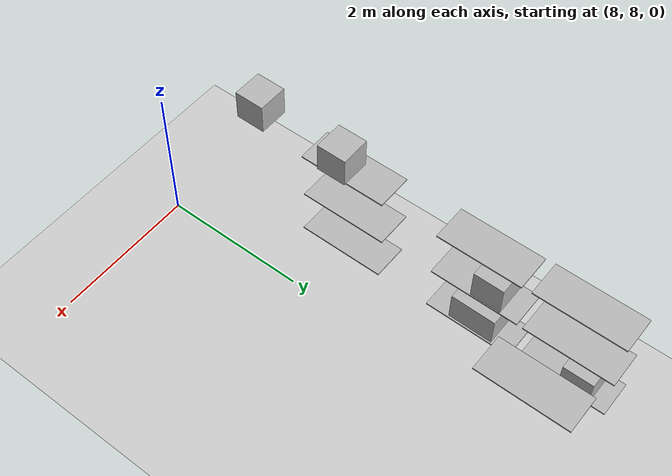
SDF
<sdf version="1.6">
 <world name="default">
  <model name="ground_plane">
   <static>1</static>
   <link name="link">
    <collision name="collision">
     <geometry><plane><normal>0 0 1</normal><size>300 300</size></plane></geometry>
     <surface>
      <contact><collide_bitmask>65535</collide_bitmask></contact>
      <friction><ode><mu>100</mu><mu2>50</mu2></ode></friction>
     </surface>
    </collision>
    <visual name="visual">
     <geometry><plane><normal>0 0 1</normal><size>100 100</size></plane></geometry>
     <material>
      <script><uri>file://media/materials/scripts/gazebo.material</uri><name>Gazebo/Grey</name></script>
     </material>
    </visual>
   </link>
  </model>
  <model name="Plano9">
   <link name="link">
    <gravity>0</gravity>
    <pose>0.117106 1.00481 0.58462 0 -0 0</pose>
    <inertial>
     <mass>1e-06</mass>
     <inertia><ixx>0.00058</ixx><ixy>0</ixy><ixz>0</ixz><iyy>0.00058</iyy><iyz>0</iyz><izz>0.00019</izz></inertia>
    </inertial>
    <visual name="visual">
     <geometry><box><size>0.2 1e-06 0.2</size></box></geometry>
     <material>
      <script>
       <uri>model://Plano9/materials/scripts</uri>
       <uri>model://Plano9/materials/textures</uri>
       <name>Plano9/Diffuse</name>
      </script>
      <shader type="pixel"/>
     </material>
     <cast_shadows>0</cast_shadows>
    </visual>
    <collision name="collision">
     <geometry><box><size>0.2 1e-06 0.2</size></box></geometry>
     <surface>
      <friction>
       <ode><mu>1</mu><mu2>1</mu2><fdir1>0 0 0</fdir1><slip1>0</slip1><slip2>0</slip2></ode>
       <torsional>
        <coefficient>1</coefficient>
        <patch_radius>0</patch_radius>
        <surface_radius>0</surface_radius>
        <use_patch_radius>1</use_patch_radius>
        <ode><slip>0</slip></ode>
       </torsional>
      </friction>
      <bounce><restitution_coefficient>0</restitution_coefficient><threshold>1e+06</threshold></bounce>
      <contact>
       <collide_without_contact>0</collide_without_contact>
       <collide_without_contact_bitmask>1</collide_without_contact_bitmask>
       <collide_bitmask>1</collide_bitmask>
       <ode>
        <soft_cfm>0</soft_cfm>
        <soft_erp>0.2</soft_erp>
        <kp>1e+13</kp>
        <kd>1</kd>
        <max_vel>0.01</max_vel>
        <min_depth>0</min_depth>
       </ode>
       <bullet>
        <split_impulse>1</split_impulse>
        <split_impulse_penetration_threshold>-0.01</split_impulse_penetration_threshold>
        <soft_cfm>0</soft_cfm>
        <soft_erp>0.2</soft_erp>
        <kp>1e+13</kp>
        <kd>1</kd>
       </bullet>
      </contact>
     </surface>
    </collision>
   </link>
   <static>0</static>
   <pose>6.2464 10.5924 0.261153 0 0 -1.57778</pose>
  </model>
  <model name="Plano10">
   <link name="link">
    <gravity>0</gravity>
    <pose>1.70124 1.53194 0.640341 0 -0 0</pose>
    <inertial>
     <mass>1e-06</mass>
     <inertia><ixx>0.00058</ixx><ixy>0</ixy><ixz>0</ixz><iyy>0.00058</iyy><iyz>0</iyz><izz>0.00019</izz></inertia>
    </inertial>
    <visual name="visual">
     <geometry><box><size>0.2 1e-06 0.2</size></box></geometry>
     <material>
      <script>
       <uri>model://Plano10/materials/scripts</uri>
       <uri>model://Plano10/materials/textures</uri>
       <name>Plano10/Diffuse</name>
      </script>
      <shader type="pixel"/>
     </material>
     <cast_shadows>0</cast_shadows>
    </visual>
    <collision name="collision">
     <geometry><box><size>0.2 1e-06 0.2</size></box></geometry>
     <surface>
      <friction>
       <ode><mu>1</mu><mu2>1</mu2><fdir1>0 0 0</fdir1><slip1>0</slip1><slip2>0</slip2></ode>
       <torsional>
        <coefficient>1</coefficient>
        <patch_radius>0</patch_radius>
        <surface_radius>0</surface_radius>
        <use_patch_radius>1</use_patch_radius>
        <ode><slip>0</slip></ode>
       </torsional>
      </friction>
      <bounce><restitution_coefficient>0</restitution_coefficient><threshold>1e+06</threshold></bounce>
      <contact>
       <collide_without_contact>0</collide_without_contact>
       <collide_without_contact_bitmask>1</collide_without_contact_bitmask>
       <collide_bitmask>1</collide_bitmask>
       <ode>
        <soft_cfm>0</soft_cfm>
        <soft_erp>0.2</soft_erp>
        <kp>1e+13</kp>
        <kd>1</kd>
        <max_vel>0.01</max_vel>
        <min_depth>0</min_depth>
       </ode>
       <bullet>
        <split_impulse>1</split_impulse>
        <split_impulse_penetration_threshold>-0.01</split_impulse_penetration_threshold>
        <soft_cfm>0</soft_cfm>
        <soft_erp>0.2</soft_erp>
        <kp>1e+13</kp>
        <kd>1</kd>
       </bullet>
      </contact>
     </surface>
    </collision>
   </link>
   <static>0</static>
   <pose>5.69431 10.7913 1.54976 0 0 -1.57552</pose>
  </model>
  <model name="Plano8">
   <link name="link">
    <gravity>0</gravity>
    <pose>-0.330727 1.61593 0.643893 0 -0 0</pose>
    <inertial>
     <mass>1e-06</mass>
     <inertia><ixx>0.00058</ixx><ixy>0</ixy><ixz>0</ixz><iyy>0.00058</iyy><iyz>0</iyz><izz>0.00019</izz></inertia>
    </inertial>
    <visual name="visual">
     <geometry><box><size>0.2 1e-06 0.2</size></box></geometry>
     <material>
      <script>
       <uri>model://Plano8/materials/scripts</uri>
       <uri>model://Plano8/materials/textures</uri>
       <name>Plano8/Diffuse</name>
      </script>
      <shader type="pixel"/>
     </material>
     <cast_shadows>0</cast_shadows>
    </visual>
    <collision name="collision">
     <geometry><box><size>0.2 1e-06 0.2</size></box></geometry>
     <surface>
      <friction>
       <ode><mu>1</mu><mu2>1</mu2><fdir1>0 0 0</fdir1><slip1>0</slip1><slip2>0</slip2></ode>
       <torsional>
        <coefficient>1</coefficient>
        <patch_radius>0</patch_radius>
        <surface_radius>0</surface_radius>
        <use_patch_radius>1</use_patch_radius>
        <ode><slip>0</slip></ode>
       </torsional>
      </friction>
      <bounce><restitution_coefficient>0</restitution_coefficient><threshold>1e+06</threshold></bounce>
      <contact>
       <collide_without_contact>0</collide_without_contact>
       <collide_without_contact_bitmask>1</collide_without_contact_bitmask>
       <collide_bitmask>1</collide_bitmask>
       <ode>
        <soft_cfm>0</soft_cfm>
        <soft_erp>0.2</soft_erp>
        <kp>1e+13</kp>
        <kd>1</kd>
        <max_vel>0.01</max_vel>
        <min_depth>0</min_depth>
       </ode>
       <bullet>
        <split_impulse>1</split_impulse>
        <split_impulse_penetration_threshold>-0.01</split_impulse_penetration_threshold>
        <soft_cfm>0</soft_cfm>
        <soft_erp>0.2</soft_erp>
        <kp>1e+13</kp>
        <kd>1</kd>
       </bullet>
      </contact>
     </surface>
    </collision>
   </link>
   <static>0</static>
   <pose>5.63572 10.0239 1.55665 0 0 -1.57219</pose>
  </model>
  <model name="Plano6">
   <link name="link">
    <gravity>0</gravity>
    <pose>0 -0.005358 -0.029165 0 -0 0</pose>
    <inertial>
     <mass>1e-06</mass>
     <inertia><ixx>0.00058</ixx><ixy>0</ixy><ixz>0</ixz><iyy>0.00058</iyy><iyz>0</iyz><izz>0.00019</izz></inertia>
    </inertial>
    <visual name="visual">
     <geometry><box><size>0.2 1e-06 0.2</size></box></geometry>
     <material>
      <script>
       <uri>model://Plano6/materials/scripts</uri>
       <uri>model://Plano6/materials/textures</uri>
       <name>Plano6/Diffuse</name>
      </script>
      <shader type="pixel"/>
     </material>
     <cast_shadows>0</cast_shadows>
    </visual>
    <collision name="collision">
     <geometry><box><size>0.2 1e-06 0.2</size></box></geometry>
     <surface>
      <friction>
       <ode><mu>1</mu><mu2>1</mu2><fdir1>0 0 0</fdir1><slip1>0</slip1><slip2>0</slip2></ode>
       <torsional>
        <coefficient>1</coefficient>
        <patch_radius>0</patch_radius>
        <surface_radius>0</surface_radius>
        <use_patch_radius>1</use_patch_radius>
        <ode><slip>0</slip></ode>
       </torsional>
      </friction>
      <bounce><restitution_coefficient>0</restitution_coefficient><threshold>1e+06</threshold></bounce>
      <contact>
       <collide_without_contact>0</collide_without_contact>
       <collide_without_contact_bitmask>1</collide_without_contact_bitmask>
       <collide_bitmask>1</collide_bitmask>
       <ode>
        <soft_cfm>0</soft_cfm>
        <soft_erp>0.2</soft_erp>
        <kp>1e+13</kp>
        <kd>1</kd>
        <max_vel>0.01</max_vel>
        <min_depth>0</min_depth>
       </ode>
       <bullet>
        <split_impulse>1</split_impulse>
        <split_impulse_penetration_threshold>-0.01</split_impulse_penetration_threshold>
        <soft_cfm>0</soft_cfm>
        <soft_erp>0.2</soft_erp>
        <kp>1e+13</kp>
        <kd>1</kd>
       </bullet>
      </contact>
     </surface>
    </collision>
   </link>
   <static>0</static>
   <pose>7.20489 12.3294 0.90104 0 0 -1.57278</pose>
  </model>
  <model name="unit_box_clone_5">
   <link name="link">
    <inertial>
     <mass>0.00922354</mass>
     <inertia>
      <ixx>0.00104733</ixx>
      <ixy>0</ixy>
      <ixz>0</ixz>
      <iyy>0.000178965</iyy>
      <iyz>0</iyz>
      <izz>0.00122588</izz>
     </inertia>
    </inertial>
    <pose>1.0387 1.15619 1.50314 -0 -0 -0</pose>
    <visual name="visual">
     <geometry><box><size>0.482252 1.16718 0.016436</size></box></geometry>
     <material>
      <script>
       <uri>model://unit_box/materials/scripts</uri>
       <uri>model://unit_box/materials/textures</uri>
       <name>shelveMat/Diffuse</name>
      </script>
      <shader type="pixel"/>
     </material>
    </visual>
    <collision name="collision">
     <geometry><box><size>0.482252 1.16718 0.016436</size></box></geometry>
     <surface>
      <friction>
       <ode><mu>1</mu><mu2>1</mu2><fdir1>0 0 0</fdir1><slip1>0</slip1><slip2>0</slip2></ode>
       <torsional>
        <coefficient>1</coefficient>
        <patch_radius>0</patch_radius>
        <surface_radius>0</surface_radius>
        <use_patch_radius>1</use_patch_radius>
        <ode><slip>0</slip></ode>
       </torsional>
      </friction>
      <bounce><restitution_coefficient>0</restitution_coefficient><threshold>1e+06</threshold></bounce>
      <contact>
       <collide_without_contact>0</collide_without_contact>
       <collide_without_contact_bitmask>1</collide_without_contact_bitmask>
       <collide_bitmask>1</collide_bitmask>
       <ode>
        <soft_cfm>0</soft_cfm>
        <soft_erp>0.2</soft_erp>
        <kp>1e+13</kp>
        <kd>1</kd>
        <max_vel>0.01</max_vel>
        <min_depth>0</min_depth>
       </ode>
       <bullet>
        <split_impulse>1</split_impulse>
        <split_impulse_penetration_threshold>-0.01</split_impulse_penetration_threshold>
        <soft_cfm>0</soft_cfm>
        <soft_erp>0.2</soft_erp>
        <kp>1e+13</kp>
        <kd>1</kd>
       </bullet>
      </contact>
     </surface>
    </collision>
   </link>
   <static>1</static>
   <pose>7.47422 12.4533 0.509169 0 -1e-06 -0.002445</pose>
  </model>
  <model name="CuboQR6">
   <link name="link">
    <pose>0.57577 -1.62645 -1.15271 0 -0 0.78008</pose>
    <inertial>
     <mass>0.39</mass>
     <inertia><ixx>0.00058</ixx><ixy>0</ixy><ixz>0</ixz><iyy>0.00058</iyy><iyz>0</iyz><izz>0.00019</izz></inertia>
    </inertial>
    <visual name="visual">
     <geometry><box><size>0.4 0.4 0.4</size></box></geometry>
     <material>
      <script>
       <uri>model://Caja/materials/scripts</uri>
       <uri>model://Caja/materials/textures</uri>
       <name>Caja/Diffuse</name>
      </script>
      <shader type="pixel"/>
     </material>
    </visual>
    <collision name="collision">
     <geometry><box><size>0.4 0.4 0.4</size></box></geometry>
     <surface>
      <friction>
       <ode><mu>1</mu><mu2>1</mu2><fdir1>0 0 0</fdir1><slip1>0</slip1><slip2>0</slip2></ode>
       <torsional>
        <coefficient>1</coefficient>
        <patch_radius>0</patch_radius>
        <surface_radius>0</surface_radius>
        <use_patch_radius>1</use_patch_radius>
        <ode><slip>0</slip></ode>
       </torsional>
      </friction>
      <bounce><restitution_coefficient>0</restitution_coefficient><threshold>1e+06</threshold></bounce>
      <contact>
       <collide_without_contact>0</collide_without_contact>
       <collide_without_contact_bitmask>1</collide_without_contact_bitmask>
       <collide_bitmask>1</collide_bitmask>
       <ode>
        <soft_cfm>0</soft_cfm>
        <soft_erp>0.2</soft_erp>
        <kp>1e+13</kp>
        <kd>1</kd>
        <max_vel>0.01</max_vel>
        <min_depth>0</min_depth>
       </ode>
       <bullet>
        <split_impulse>1</split_impulse>
        <split_impulse_penetration_threshold>-0.01</split_impulse_penetration_threshold>
        <soft_cfm>0</soft_cfm>
        <soft_erp>0.2</soft_erp>
        <kp>1e+13</kp>
        <kd>1</kd>
       </bullet>
      </contact>
     </surface>
    </collision>
   </link>
   <static>0</static>
   <pose>5.85199 11.7743 0.420957 3.14159 -4e-06 -0.796055</pose>
  </model>
  <model name="unit_box_clone_10_clone_6_clone">
   <link name="link">
    <inertial>
     <mass>0.00922354</mass>
     <inertia>
      <ixx>0.00104733</ixx>
      <ixy>0</ixy>
      <ixz>0</ixz>
      <iyy>0.000178965</iyy>
      <iyz>0</iyz>
      <izz>0.00122588</izz>
     </inertia>
    </inertial>
    <pose>1.30004 -1.35824 0.177157 -0 -0 -0</pose>
    <visual name="visual">
     <geometry><box><size>0.482252 1.16718 0.016436</size></box></geometry>
     <material>
      <script>
       <uri>model://unit_box/materials/scripts</uri>
       <uri>model://unit_box/materials/textures</uri>
       <name>shelveMat/Diffuse</name>
      </script>
      <shader type="pixel"/>
     </material>
    </visual>
    <collision name="collision">
     <geometry><box><size>0.482252 1.16718 0.016436</size></box></geometry>
     <surface>
      <friction>
       <ode><mu>1</mu><mu2>1</mu2><fdir1>0 0 0</fdir1><slip1>0</slip1><slip2>0</slip2></ode>
       <torsional>
        <coefficient>1</coefficient>
        <patch_radius>0</patch_radius>
        <surface_radius>0</surface_radius>
        <use_patch_radius>1</use_patch_radius>
        <ode><slip>0</slip></ode>
       </torsional>
      </friction>
      <bounce><restitution_coefficient>0</restitution_coefficient><threshold>1e+06</threshold></bounce>
      <contact>
       <collide_without_contact>0</collide_without_contact>
       <collide_without_contact_bitmask>1</collide_without_contact_bitmask>
       <collide_bitmask>1</collide_bitmask>
       <ode>
        <soft_cfm>0</soft_cfm>
        <soft_erp>0.2</soft_erp>
        <kp>1e+13</kp>
        <kd>1</kd>
        <max_vel>0.01</max_vel>
        <min_depth>0</min_depth>
       </ode>
       <bullet>
        <split_impulse>1</split_impulse>
        <split_impulse_penetration_threshold>-0.01</split_impulse_penetration_threshold>
        <soft_cfm>0</soft_cfm>
        <soft_erp>0.2</soft_erp>
        <kp>1e+13</kp>
        <kd>1</kd>
       </bullet>
      </contact>
     </surface>
    </collision>
   </link>
   <static>1</static>
   <pose>6.08652 13.7018 0.509169 0 -1e-06 -0.002445</pose>
  </model>
  <model name="unit_box_clone_10_clone_6">
   <link name="link">
    <inertial>
     <mass>0.00922354</mass>
     <inertia>
      <ixx>0.00104733</ixx>
      <ixy>0</ixy>
      <ixz>0</ixz>
      <iyy>0.000178965</iyy>
      <iyz>0</iyz>
      <izz>0.00122588</izz>
     </inertia>
    </inertial>
    <pose>1.28673 -1.35824 0.193217 -0 -0 -0</pose>
    <visual name="visual">
     <geometry><box><size>0.482252 1.16718 0.016436</size></box></geometry>
     <material>
      <script>
       <uri>model://unit_box/materials/scripts</uri>
       <uri>model://unit_box/materials/textures</uri>
       <name>shelveMat/Diffuse</name>
      </script>
      <shader type="pixel"/>
     </material>
    </visual>
    <collision name="collision">
     <geometry><box><size>0.482252 1.16718 0.016436</size></box></geometry>
     <surface>
      <friction>
       <ode><mu>1</mu><mu2>1</mu2><fdir1>0 0 0</fdir1><slip1>0</slip1><slip2>0</slip2></ode>
       <torsional>
        <coefficient>1</coefficient>
        <patch_radius>0</patch_radius>
        <surface_radius>0</surface_radius>
        <use_patch_radius>1</use_patch_radius>
        <ode><slip>0</slip></ode>
       </torsional>
      </friction>
      <bounce><restitution_coefficient>0</restitution_coefficient><threshold>1e+06</threshold></bounce>
      <contact>
       <collide_without_contact>0</collide_without_contact>
       <collide_without_contact_bitmask>1</collide_without_contact_bitmask>
       <collide_bitmask>1</collide_bitmask>
       <ode>
        <soft_cfm>0</soft_cfm>
        <soft_erp>0.2</soft_erp>
        <kp>1e+13</kp>
        <kd>1</kd>
        <max_vel>0.01</max_vel>
        <min_depth>0</min_depth>
       </ode>
       <bullet>
        <split_impulse>1</split_impulse>
        <split_impulse_penetration_threshold>-0.01</split_impulse_penetration_threshold>
        <soft_cfm>0</soft_cfm>
        <soft_erp>0.2</soft_erp>
        <kp>1e+13</kp>
        <kd>1</kd>
       </bullet>
      </contact>
     </surface>
    </collision>
   </link>
   <static>1</static>
   <pose>6.08613 14.9623 0.509169 0 -1e-06 -0.002445</pose>
  </model>
  <model name="unit_box_clone_10_clone">
   <link name="link">
    <inertial>
     <mass>0.00922354</mass>
     <inertia>
      <ixx>0.00104733</ixx>
      <ixy>0</ixy>
      <ixz>0</ixz>
      <iyy>0.000178965</iyy>
      <iyz>0</iyz>
      <izz>0.00122588</izz>
     </inertia>
    </inertial>
    <pose>2.16821 0.157655 0.848426 -0 -0 -0</pose>
    <visual name="visual">
     <geometry><box><size>0.482252 1.16718 0.016436</size></box></geometry>
     <material>
      <script>
       <uri>model://unit_box/materials/scripts</uri>
       <uri>model://unit_box/materials/textures</uri>
       <name>shelveMat/Diffuse</name>
      </script>
      <shader type="pixel"/>
     </material>
    </visual>
    <collision name="collision">
     <geometry><box><size>0.482252 1.16718 0.016436</size></box></geometry>
     <surface>
      <friction>
       <ode><mu>1</mu><mu2>1</mu2><fdir1>0 0 0</fdir1><slip1>0</slip1><slip2>0</slip2></ode>
       <torsional>
        <coefficient>1</coefficient>
        <patch_radius>0</patch_radius>
        <surface_radius>0</surface_radius>
        <use_patch_radius>1</use_patch_radius>
        <ode><slip>0</slip></ode>
       </torsional>
      </friction>
      <bounce><restitution_coefficient>0</restitution_coefficient><threshold>1e+06</threshold></bounce>
      <contact>
       <collide_without_contact>0</collide_without_contact>
       <collide_without_contact_bitmask>1</collide_without_contact_bitmask>
       <collide_bitmask>1</collide_bitmask>
       <ode>
        <soft_cfm>0</soft_cfm>
        <soft_erp>0.2</soft_erp>
        <kp>1e+13</kp>
        <kd>1</kd>
        <max_vel>0.01</max_vel>
        <min_depth>0</min_depth>
       </ode>
       <bullet>
        <split_impulse>1</split_impulse>
        <split_impulse_penetration_threshold>-0.01</split_impulse_penetration_threshold>
        <soft_cfm>0</soft_cfm>
        <soft_erp>0.2</soft_erp>
        <kp>1e+13</kp>
        <kd>1</kd>
       </bullet>
      </contact>
     </surface>
    </collision>
   </link>
   <static>1</static>
   <pose>5.2316 10.3415 0.509172 0 -1e-06 -0.002445</pose>
  </model>
  <model name="unit_box_clone_10_clone_clone_0">
   <link name="link">
    <inertial>
     <mass>0.00922354</mass>
     <inertia>
      <ixx>0.00104733</ixx>
      <ixy>0</ixy>
      <ixz>0</ixz>
      <iyy>0.000178965</iyy>
      <iyz>0</iyz>
      <izz>0.00122588</izz>
     </inertia>
    </inertial>
    <pose>2.72717 0.102037 1.5059 -0 -0 -0</pose>
    <visual name="visual">
     <geometry><box><size>0.482252 1.16718 0.016436</size></box></geometry>
     <material>
      <script>
       <uri>model://unit_box/materials/scripts</uri>
       <uri>model://unit_box/materials/textures</uri>
       <name>shelveMat/Diffuse</name>
      </script>
      <shader type="pixel"/>
     </material>
    </visual>
    <collision name="collision">
     <geometry><box><size>0.482252 1.16718 0.016436</size></box></geometry>
     <surface>
      <friction>
       <ode><mu>1</mu><mu2>1</mu2><fdir1>0 0 0</fdir1><slip1>0</slip1><slip2>0</slip2></ode>
       <torsional>
        <coefficient>1</coefficient>
        <patch_radius>0</patch_radius>
        <surface_radius>0</surface_radius>
        <use_patch_radius>1</use_patch_radius>
        <ode><slip>0</slip></ode>
       </torsional>
      </friction>
      <bounce><restitution_coefficient>0</restitution_coefficient><threshold>1e+06</threshold></bounce>
      <contact>
       <collide_without_contact>0</collide_without_contact>
       <collide_without_contact_bitmask>1</collide_without_contact_bitmask>
       <collide_bitmask>1</collide_bitmask>
       <ode>
        <soft_cfm>0</soft_cfm>
        <soft_erp>0.2</soft_erp>
        <kp>1e+13</kp>
        <kd>1</kd>
        <max_vel>0.01</max_vel>
        <min_depth>0</min_depth>
       </ode>
       <bullet>
        <split_impulse>1</split_impulse>
        <split_impulse_penetration_threshold>-0.01</split_impulse_penetration_threshold>
        <soft_cfm>0</soft_cfm>
        <soft_erp>0.2</soft_erp>
        <kp>1e+13</kp>
        <kd>1</kd>
       </bullet>
      </contact>
     </surface>
    </collision>
   </link>
   <static>1</static>
   <pose>4.66579 10.3616 0.509167 0 -1e-06 -0.002445</pose>
  </model>
  <model name="unit_box_clone_10_clone_clone">
   <link name="link">
    <inertial>
     <mass>0.00922354</mass>
     <inertia>
      <ixx>0.00104733</ixx>
      <ixy>0</ixy>
      <ixz>0</ixz>
      <iyy>0.000178965</iyy>
      <iyz>0</iyz>
      <izz>0.00122588</izz>
     </inertia>
    </inertial>
    <pose>0.820816 -0.395541 0.158528 -0 -0 -0</pose>
    <visual name="visual">
     <geometry><box><size>0.482252 1.16718 0.016436</size></box></geometry>
     <material>
      <script>
       <uri>model://unit_box/materials/scripts</uri>
       <uri>model://unit_box/materials/textures</uri>
       <name>shelveMat/Diffuse</name>
      </script>
      <shader type="pixel"/>
     </material>
    </visual>
    <collision name="collision">
     <geometry><box><size>0.482252 1.16718 0.016436</size></box></geometry>
     <surface>
      <friction>
       <ode><mu>1</mu><mu2>1</mu2><fdir1>0 0 0</fdir1><slip1>0</slip1><slip2>0</slip2></ode>
       <torsional>
        <coefficient>1</coefficient>
        <patch_radius>0</patch_radius>
        <surface_radius>0</surface_radius>
        <use_patch_radius>1</use_patch_radius>
        <ode><slip>0</slip></ode>
       </torsional>
      </friction>
      <bounce><restitution_coefficient>0</restitution_coefficient><threshold>1e+06</threshold></bounce>
      <contact>
       <collide_without_contact>0</collide_without_contact>
       <collide_without_contact_bitmask>1</collide_without_contact_bitmask>
       <collide_bitmask>1</collide_bitmask>
       <ode>
        <soft_cfm>0</soft_cfm>
        <soft_erp>0.2</soft_erp>
        <kp>1e+13</kp>
        <kd>1</kd>
        <max_vel>0.01</max_vel>
        <min_depth>0</min_depth>
       </ode>
       <bullet>
        <split_impulse>1</split_impulse>
        <split_impulse_penetration_threshold>-0.01</split_impulse_penetration_threshold>
        <soft_cfm>0</soft_cfm>
        <soft_erp>0.2</soft_erp>
        <kp>1e+13</kp>
        <kd>1</kd>
       </bullet>
      </contact>
     </surface>
    </collision>
   </link>
   <static>1</static>
   <pose>6.57071 10.8643 0.509169 0 -1e-06 -0.002445</pose>
  </model>
  <model name="CuboQR10">
   <link name="link">
    <pose>1.13918 1.07848 -1.77123 0 0 -0.643647</pose>
    <inertial>
     <mass>0.39</mass>
     <inertia><ixx>0.00058</ixx><ixy>0</ixy><ixz>0</ixz><iyy>0.00058</iyy><iyz>0</iyz><izz>0.00019</izz></inertia>
    </inertial>
    <visual name="visual">
     <geometry><box><size>0.4 0.4 0.4</size></box></geometry>
     <material>
      <script>
       <uri>model://Caja/materials/scripts</uri>
       <uri>model://Caja/materials/textures</uri>
       <name>Caja/Diffuse</name>
      </script>
      <shader type="pixel"/>
     </material>
    </visual>
    <collision name="collision">
     <geometry><box><size>0.4 0.4 0.4</size></box></geometry>
     <surface>
      <friction>
       <ode><mu>1</mu><mu2>1</mu2><fdir1>0 0 0</fdir1><slip1>0</slip1><slip2>0</slip2></ode>
       <torsional>
        <coefficient>1</coefficient>
        <patch_radius>0</patch_radius>
        <surface_radius>0</surface_radius>
        <use_patch_radius>1</use_patch_radius>
        <ode><slip>0</slip></ode>
       </torsional>
      </friction>
      <bounce><restitution_coefficient>0</restitution_coefficient><threshold>1e+06</threshold></bounce>
      <contact>
       <collide_without_contact>0</collide_without_contact>
       <collide_without_contact_bitmask>1</collide_without_contact_bitmask>
       <collide_bitmask>1</collide_bitmask>
       <ode>
        <soft_cfm>0</soft_cfm>
        <soft_erp>0.2</soft_erp>
        <kp>1e+13</kp>
        <kd>1</kd>
        <max_vel>0.01</max_vel>
        <min_depth>0</min_depth>
       </ode>
       <bullet>
        <split_impulse>1</split_impulse>
        <split_impulse_penetration_threshold>-0.01</split_impulse_penetration_threshold>
        <soft_cfm>0</soft_cfm>
        <soft_erp>0.2</soft_erp>
        <kp>1e+13</kp>
        <kd>1</kd>
       </bullet>
      </contact>
     </surface>
    </collision>
   </link>
   <static>1</static>
   <pose>5.91923 10.0701 0.452054 -3.14159 -7e-06 0.924553</pose>
  </model>
  <model name="CuboQR9">
   <link name="link">
    <pose>-2.02851 0.709334 2.01383 0.252134 0.007293 0.002021</pose>
    <inertial>
     <mass>0.39</mass>
     <inertia><ixx>0.00058</ixx><ixy>0</ixy><ixz>0</ixz><iyy>0.00058</iyy><iyz>0</iyz><izz>0.00019</izz></inertia>
    </inertial>
    <visual name="visual">
     <geometry><box><size>0.4 0.4 0.4</size></box></geometry>
     <material>
      <script>
       <uri>model://Caja/materials/scripts</uri>
       <uri>model://Caja/materials/textures</uri>
       <name>Caja/Diffuse</name>
      </script>
      <shader type="pixel"/>
     </material>
    </visual>
    <collision name="collision">
     <geometry><box><size>0.4 0.4 0.4</size></box></geometry>
     <surface>
      <friction>
       <ode><mu>1</mu><mu2>1</mu2><fdir1>0 0 0</fdir1><slip1>0</slip1><slip2>0</slip2></ode>
       <torsional>
        <coefficient>1</coefficient>
        <patch_radius>0</patch_radius>
        <surface_radius>0</surface_radius>
        <use_patch_radius>1</use_patch_radius>
        <ode><slip>0</slip></ode>
       </torsional>
      </friction>
      <bounce><restitution_coefficient>0</restitution_coefficient><threshold>1e+06</threshold></bounce>
      <contact>
       <collide_without_contact>0</collide_without_contact>
       <collide_without_contact_bitmask>1</collide_without_contact_bitmask>
       <collide_bitmask>1</collide_bitmask>
       <ode>
        <soft_cfm>0</soft_cfm>
        <soft_erp>0.2</soft_erp>
        <kp>1e+13</kp>
        <kd>1</kd>
        <max_vel>0.01</max_vel>
        <min_depth>0</min_depth>
       </ode>
       <bullet>
        <split_impulse>1</split_impulse>
        <split_impulse_penetration_threshold>-0.01</split_impulse_penetration_threshold>
        <soft_cfm>0</soft_cfm>
        <soft_erp>0.2</soft_erp>
        <kp>1e+13</kp>
        <kd>1</kd>
       </bullet>
      </contact>
     </surface>
    </collision>
   </link>
   <static>1</static>
   <pose>6.24383 10.8473 0.183923 -0.268485 1.56322 -1.59537</pose>
  </model>
  <model name="unit_box_clone">
   <link name="link">
    <inertial>
     <mass>0.00878053</mass>
     <inertia>
      <ixx>0.00090356</ixx>
      <ixy>0</ixy>
      <ixz>0</ixz>
      <iyy>0.00017037</iyy>
      <iyz>0</iyz>
      <izz>0.00107353</izz>
     </inertia>
    </inertial>
    <pose>1.02938 1.15591 1.53561 -0 -0 -0</pose>
    <visual name="visual">
     <geometry><box><size>0.482252 1.11112 0.016436</size></box></geometry>
     <material>
      <script>
       <uri>model://unit_box/materials/scripts</uri>
       <uri>model://unit_box/materials/textures</uri>
       <name>shelveMat/Diffuse</name>
      </script>
      <shader type="pixel"/>
     </material>
    </visual>
    <collision name="collision">
     <geometry><box><size>0.482252 1.11112 0.016436</size></box></geometry>
     <surface>
      <friction>
       <ode><mu>1</mu><mu2>1</mu2><fdir1>0 0 0</fdir1><slip1>0</slip1><slip2>0</slip2></ode>
       <torsional>
        <coefficient>1</coefficient>
        <patch_radius>0</patch_radius>
        <surface_radius>0</surface_radius>
        <use_patch_radius>1</use_patch_radius>
        <ode><slip>0</slip></ode>
       </torsional>
      </friction>
      <bounce><restitution_coefficient>0</restitution_coefficient><threshold>1e+06</threshold></bounce>
      <contact>
       <collide_without_contact>0</collide_without_contact>
       <collide_without_contact_bitmask>1</collide_without_contact_bitmask>
       <collide_bitmask>1</collide_bitmask>
       <ode>
        <soft_cfm>0</soft_cfm>
        <soft_erp>0.2</soft_erp>
        <kp>1e+13</kp>
        <kd>1</kd>
        <max_vel>0.01</max_vel>
        <min_depth>0</min_depth>
       </ode>
       <bullet>
        <split_impulse>1</split_impulse>
        <split_impulse_penetration_threshold>-0.01</split_impulse_penetration_threshold>
        <soft_cfm>0</soft_cfm>
        <soft_erp>0.2</soft_erp>
        <kp>1e+13</kp>
        <kd>1</kd>
       </bullet>
      </contact>
     </surface>
    </collision>
   </link>
   <static>1</static>
   <pose>6.35348 11.181 0.509169 0 -1e-06 -0.002445</pose>
  </model>
  <model name="unit_box">
   <link name="link">
    <inertial>
     <mass>0.00922354</mass>
     <inertia>
      <ixx>0.00104733</ixx>
      <ixy>0</ixy>
      <ixz>0</ixz>
      <iyy>0.000178965</iyy>
      <iyz>0</iyz>
      <izz>0.00122588</izz>
     </inertia>
    </inertial>
    <pose>1.02721 1.1747 1.53081 -0 -0 -0</pose>
    <visual name="visual">
     <geometry><box><size>0.482252 1.16718 0.016436</size></box></geometry>
     <material>
      <script>
       <uri>model://unit_box/materials/scripts</uri>
       <uri>model://unit_box/materials/textures</uri>
       <name>shelveMat/Diffuse</name>
      </script>
      <shader type="pixel"/>
     </material>
    </visual>
    <collision name="collision">
     <geometry><box><size>0.482252 1.16718 0.016436</size></box></geometry>
     <surface>
      <friction>
       <ode><mu>1</mu><mu2>1</mu2><fdir1>0 0 0</fdir1><slip1>0</slip1><slip2>0</slip2></ode>
       <torsional>
        <coefficient>1</coefficient>
        <patch_radius>0</patch_radius>
        <surface_radius>0</surface_radius>
        <use_patch_radius>1</use_patch_radius>
        <ode><slip>0</slip></ode>
       </torsional>
      </friction>
      <bounce><restitution_coefficient>0</restitution_coefficient><threshold>1e+06</threshold></bounce>
      <contact>
       <collide_without_contact>0</collide_without_contact>
       <collide_without_contact_bitmask>1</collide_without_contact_bitmask>
       <collide_bitmask>1</collide_bitmask>
       <ode>
        <soft_cfm>0</soft_cfm>
        <soft_erp>0.2</soft_erp>
        <kp>1e+13</kp>
        <kd>1</kd>
        <max_vel>0.01</max_vel>
        <min_depth>0</min_depth>
       </ode>
       <bullet>
        <split_impulse>1</split_impulse>
        <split_impulse_penetration_threshold>-0.01</split_impulse_penetration_threshold>
        <soft_cfm>0</soft_cfm>
        <soft_erp>0.2</soft_erp>
        <kp>1e+13</kp>
        <kd>1</kd>
       </bullet>
      </contact>
     </surface>
    </collision>
   </link>
   <static>1</static>
   <pose>6.34377 12.4173 0.509169 0 -1e-06 -0.002445</pose>
  </model>
  <model name="unit_box_clone_10">
   <link name="link">
    <inertial>
     <mass>0.00922354</mass>
     <inertia>
      <ixx>0.00104733</ixx>
      <ixy>0</ixy>
      <ixz>0</ixz>
      <iyy>0.000178965</iyy>
      <iyz>0</iyz>
      <izz>0.00122588</izz>
     </inertia>
    </inertial>
    <pose>2.17693 0.157655 0.856749 -0 -0 -0</pose>
    <visual name="visual">
     <geometry><box><size>0.482252 1.16718 0.016436</size></box></geometry>
     <material>
      <script>
       <uri>model://unit_box/materials/scripts</uri>
       <uri>model://unit_box/materials/textures</uri>
       <name>shelveMat/Diffuse</name>
      </script>
      <shader type="pixel"/>
     </material>
    </visual>
    <collision name="collision">
     <geometry><box><size>0.482252 1.16718 0.016436</size></box></geometry>
     <surface>
      <friction>
       <ode><mu>1</mu><mu2>1</mu2><fdir1>0 0 0</fdir1><slip1>0</slip1><slip2>0</slip2></ode>
       <torsional>
        <coefficient>1</coefficient>
        <patch_radius>0</patch_radius>
        <surface_radius>0</surface_radius>
        <use_patch_radius>1</use_patch_radius>
        <ode><slip>0</slip></ode>
       </torsional>
      </friction>
      <bounce><restitution_coefficient>0</restitution_coefficient><threshold>1e+06</threshold></bounce>
      <contact>
       <collide_without_contact>0</collide_without_contact>
       <collide_without_contact_bitmask>1</collide_without_contact_bitmask>
       <collide_bitmask>1</collide_bitmask>
       <ode>
        <soft_cfm>0</soft_cfm>
        <soft_erp>0.2</soft_erp>
        <kp>1e+13</kp>
        <kd>1</kd>
        <max_vel>0.01</max_vel>
        <min_depth>0</min_depth>
       </ode>
       <bullet>
        <split_impulse>1</split_impulse>
        <split_impulse_penetration_threshold>-0.01</split_impulse_penetration_threshold>
        <soft_cfm>0</soft_cfm>
        <soft_erp>0.2</soft_erp>
        <kp>1e+13</kp>
        <kd>1</kd>
       </bullet>
      </contact>
     </surface>
    </collision>
   </link>
   <static>1</static>
   <pose>5.21449 13.4399 0.509169 0 -1e-06 -0.002445</pose>
  </model>
  <model name="unit_box_clone_10_clone_5">
   <link name="link">
    <inertial>
     <mass>0.00922354</mass>
     <inertia>
      <ixx>0.00104733</ixx>
      <ixy>0</ixy>
      <ixz>0</ixz>
      <iyy>0.000178965</iyy>
      <iyz>0</iyz>
      <izz>0.00122588</izz>
     </inertia>
    </inertial>
    <pose>1.5633 -2.43255 0.856281 -0 -0 -0</pose>
    <visual name="visual">
     <geometry><box><size>0.482252 1.16718 0.016436</size></box></geometry>
     <material>
      <script>
       <uri>model://unit_box/materials/scripts</uri>
       <uri>model://unit_box/materials/textures</uri>
       <name>shelveMat/Diffuse</name>
      </script>
      <shader type="pixel"/>
     </material>
    </visual>
    <collision name="collision">
     <geometry><box><size>0.482252 1.16718 0.016436</size></box></geometry>
     <surface>
      <friction>
       <ode><mu>1</mu><mu2>1</mu2><fdir1>0 0 0</fdir1><slip1>0</slip1><slip2>0</slip2></ode>
       <torsional>
        <coefficient>1</coefficient>
        <patch_radius>0</patch_radius>
        <surface_radius>0</surface_radius>
        <use_patch_radius>1</use_patch_radius>
        <ode><slip>0</slip></ode>
       </torsional>
      </friction>
      <bounce><restitution_coefficient>0</restitution_coefficient><threshold>1e+06</threshold></bounce>
      <contact>
       <collide_without_contact>0</collide_without_contact>
       <collide_without_contact_bitmask>1</collide_without_contact_bitmask>
       <collide_bitmask>1</collide_bitmask>
       <ode>
        <soft_cfm>0</soft_cfm>
        <soft_erp>0.2</soft_erp>
        <kp>1e+13</kp>
        <kd>1</kd>
        <max_vel>0.01</max_vel>
        <min_depth>0</min_depth>
       </ode>
       <bullet>
        <split_impulse>1</split_impulse>
        <split_impulse_penetration_threshold>-0.01</split_impulse_penetration_threshold>
        <soft_cfm>0</soft_cfm>
        <soft_erp>0.2</soft_erp>
        <kp>1e+13</kp>
        <kd>1</kd>
       </bullet>
      </contact>
     </surface>
    </collision>
   </link>
   <static>1</static>
   <pose>5.83019 14.7874 0.509167 0 -1e-06 -0.002445</pose>
  </model>
  <model name="Plano5">
   <link name="link">
    <gravity>0</gravity>
    <pose>1.48663 0.009701 0.7017 0 -0 0.003414</pose>
    <inertial>
     <mass>1e-06</mass>
     <inertia><ixx>0.00058</ixx><ixy>0</ixy><ixz>0</ixz><iyy>0.00058</iyy><iyz>0</iyz><izz>0.00019</izz></inertia>
    </inertial>
    <visual name="visual">
     <geometry><box><size>0.2 1e-06 0.2</size></box></geometry>
     <material>
      <script>
       <uri>model://Plano5/materials/scripts</uri>
       <uri>model://Plano5/materials/textures</uri>
       <name>Plano5/Diffuse</name>
      </script>
      <shader type="pixel"/>
     </material>
     <cast_shadows>0</cast_shadows>
    </visual>
    <collision name="collision">
     <geometry><box><size>0.2 1e-06 0.2</size></box></geometry>
     <surface>
      <friction>
       <ode><mu>1</mu><mu2>1</mu2><fdir1>0 0 0</fdir1><slip1>0</slip1><slip2>0</slip2></ode>
       <torsional>
        <coefficient>1</coefficient>
        <patch_radius>0</patch_radius>
        <surface_radius>0</surface_radius>
        <use_patch_radius>1</use_patch_radius>
        <ode><slip>0</slip></ode>
       </torsional>
      </friction>
      <bounce><restitution_coefficient>0</restitution_coefficient><threshold>1e+06</threshold></bounce>
      <contact>
       <collide_without_contact>0</collide_without_contact>
       <collide_without_contact_bitmask>1</collide_without_contact_bitmask>
       <collide_bitmask>1</collide_bitmask>
       <ode>
        <soft_cfm>0</soft_cfm>
        <soft_erp>0.2</soft_erp>
        <kp>1e+13</kp>
        <kd>1</kd>
        <max_vel>0.01</max_vel>
        <min_depth>0</min_depth>
       </ode>
       <bullet>
        <split_impulse>1</split_impulse>
        <split_impulse_penetration_threshold>-0.01</split_impulse_penetration_threshold>
        <soft_cfm>0</soft_cfm>
        <soft_erp>0.2</soft_erp>
        <kp>1e+13</kp>
        <kd>1</kd>
       </bullet>
      </contact>
     </surface>
    </collision>
   </link>
   <static>0</static>
   <pose>7.21227 13.9906 0.90178 0 0 -1.58032</pose>
  </model>
  <model name="CuboQR5">
   <link name="link">
    <pose>1.44332 -0.260366 0.950515 0 -0 -0.049904</pose>
    <inertial>
     <mass>0.39</mass>
     <inertia><ixx>0.00058</ixx><ixy>0</ixy><ixz>0</ixz><iyy>0.00058</iyy><iyz>0</iyz><izz>0.00019</izz></inertia>
    </inertial>
    <visual name="visual">
     <geometry><box><size>0.4 0.4 0.4</size></box></geometry>
     <material>
      <script>
       <uri>model://Caja/materials/scripts</uri>
       <uri>model://Caja/materials/textures</uri>
       <name>Caja/Diffuse</name>
      </script>
      <shader type="pixel"/>
     </material>
    </visual>
    <collision name="collision">
     <geometry><box><size>0.4 0.4 0.4</size></box></geometry>
     <surface>
      <friction>
       <ode><mu>1</mu><mu2>1</mu2><fdir1>0 0 0</fdir1><slip1>0</slip1><slip2>0</slip2></ode>
       <torsional>
        <coefficient>1</coefficient>
        <patch_radius>0</patch_radius>
        <surface_radius>0</surface_radius>
        <use_patch_radius>1</use_patch_radius>
        <ode><slip>0</slip></ode>
       </torsional>
      </friction>
      <bounce><restitution_coefficient>0</restitution_coefficient><threshold>1e+06</threshold></bounce>
      <contact>
       <collide_without_contact>0</collide_without_contact>
       <collide_without_contact_bitmask>1</collide_without_contact_bitmask>
       <collide_bitmask>1</collide_bitmask>
       <ode>
        <soft_cfm>0</soft_cfm>
        <soft_erp>0.2</soft_erp>
        <kp>1e+13</kp>
        <kd>1</kd>
        <max_vel>0.01</max_vel>
        <min_depth>0</min_depth>
       </ode>
       <bullet>
        <split_impulse>1</split_impulse>
        <split_impulse_penetration_threshold>-0.01</split_impulse_penetration_threshold>
        <soft_cfm>0</soft_cfm>
        <soft_erp>0.2</soft_erp>
        <kp>1e+13</kp>
        <kd>1</kd>
       </bullet>
      </contact>
     </surface>
    </collision>
   </link>
   <static>1</static>
   <pose>5.96762 13.9618 -0.039915 -0 -4e-06 0.048652</pose>
  </model>
  <model name="Plano32">
   <link name="link">
    <gravity>0</gravity>
    <pose>0.196321 -0.030157 -0.635286 0 -0 0</pose>
    <inertial>
     <mass>1e-06</mass>
     <inertia><ixx>0.00058</ixx><ixy>0</ixy><ixz>0</ixz><iyy>0.00058</iyy><iyz>0</iyz><izz>0.00019</izz></inertia>
    </inertial>
    <visual name="visual">
     <geometry><box><size>0.2 1e-06 0.2</size></box></geometry>
     <material>
      <script>
       <uri>model://Plano32/materials/scripts</uri>
       <uri>model://Plano32/materials/textures</uri>
       <name>Plano32/Diffuse</name>
      </script>
      <shader type="pixel"/>
     </material>
     <cast_shadows>0</cast_shadows>
    </visual>
    <collision name="collision">
     <geometry><box><size>0.2 1e-06 0.2</size></box></geometry>
     <surface>
      <friction>
       <ode><mu>1</mu><mu2>1</mu2><fdir1>0 0 0</fdir1><slip1>0</slip1><slip2>0</slip2></ode>
       <torsional>
        <coefficient>1</coefficient>
        <patch_radius>0</patch_radius>
        <surface_radius>0</surface_radius>
        <use_patch_radius>1</use_patch_radius>
        <ode><slip>0</slip></ode>
       </torsional>
      </friction>
      <bounce><restitution_coefficient>0</restitution_coefficient><threshold>1e+06</threshold></bounce>
      <contact>
       <collide_without_contact>0</collide_without_contact>
       <collide_without_contact_bitmask>1</collide_without_contact_bitmask>
       <collide_bitmask>1</collide_bitmask>
       <ode>
        <soft_cfm>0</soft_cfm>
        <soft_erp>0.2</soft_erp>
        <kp>1e+13</kp>
        <kd>1</kd>
        <max_vel>0.01</max_vel>
        <min_depth>0</min_depth>
       </ode>
       <bullet>
        <split_impulse>1</split_impulse>
        <split_impulse_penetration_threshold>-0.01</split_impulse_penetration_threshold>
        <soft_cfm>0</soft_cfm>
        <soft_erp>0.2</soft_erp>
        <kp>1e+13</kp>
        <kd>1</kd>
       </bullet>
      </contact>
     </surface>
    </collision>
   </link>
   <static>0</static>
   <pose>7.25006 13.9474 1.55071 0 0 -1.5803</pose>
  </model>
  <model name="CuboQR32">
   <link name="link">
    <pose>5.2e-05 -2.98857 0.960078 -0 -0 -0.555817</pose>
    <inertial>
     <mass>0.39</mass>
     <inertia><ixx>0.00058</ixx><ixy>0</ixy><ixz>0</ixz><iyy>0.00058</iyy><iyz>0</iyz><izz>0.00019</izz></inertia>
    </inertial>
    <visual name="visual">
     <geometry><box><size>0.4 0.6 0.4</size></box></geometry>
     <material>
      <script>
       <uri>model://Caja/materials/scripts</uri>
       <uri>model://Caja/materials/textures</uri>
       <name>Caja/Diffuse</name>
      </script>
      <shader type="pixel"/>
     </material>
    </visual>
    <collision name="collision">
     <geometry><box><size>0.4 0.6 0.4</size></box></geometry>
     <surface>
      <friction>
       <ode><mu>1</mu><mu2>1</mu2><fdir1>0 0 0</fdir1><slip1>0</slip1><slip2>0</slip2></ode>
       <torsional>
        <coefficient>1</coefficient>
        <patch_radius>0</patch_radius>
        <surface_radius>0</surface_radius>
        <use_patch_radius>1</use_patch_radius>
        <ode><slip>0</slip></ode>
       </torsional>
      </friction>
      <bounce><restitution_coefficient>0</restitution_coefficient><threshold>1e+06</threshold></bounce>
      <contact>
       <collide_without_contact>0</collide_without_contact>
       <collide_without_contact_bitmask>1</collide_without_contact_bitmask>
       <collide_bitmask>1</collide_bitmask>
       <ode>
        <soft_cfm>0</soft_cfm>
        <soft_erp>0.2</soft_erp>
        <kp>1e+13</kp>
        <kd>1</kd>
        <max_vel>0.01</max_vel>
        <min_depth>0</min_depth>
       </ode>
       <bullet>
        <split_impulse>1</split_impulse>
        <split_impulse_penetration_threshold>-0.01</split_impulse_penetration_threshold>
        <soft_cfm>0</soft_cfm>
        <soft_erp>0.2</soft_erp>
        <kp>1e+13</kp>
        <kd>1</kd>
       </bullet>
      </contact>
     </surface>
    </collision>
   </link>
   <static>1</static>
   <pose>5.84008 14.9104 -0.073586 -0.0026 0.00159 0.549244</pose>
  </model>
 </world>
</sdf>
